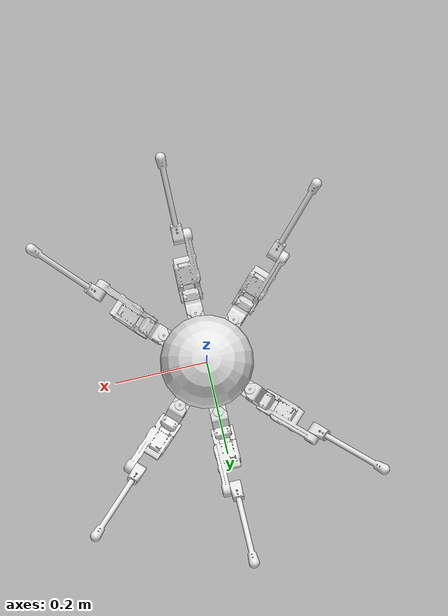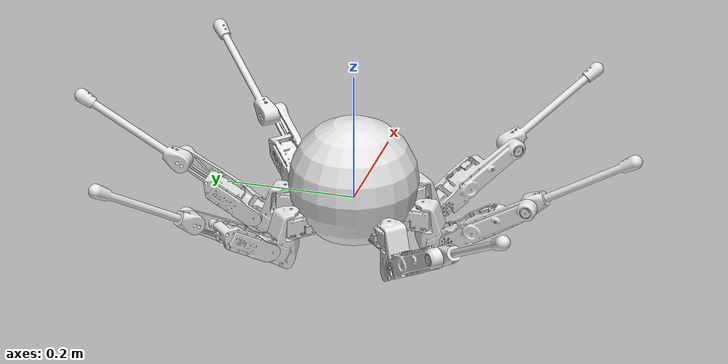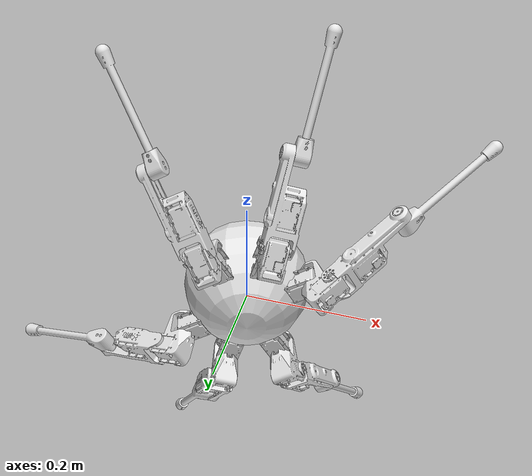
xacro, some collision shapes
<?xml version="1.0"?>
<robot xmlns:xacro="http://www.ros.org/wiki/xacro" name="sence">

    <!-- materials -->
    <xacro:include filename="$(find sence_description)/urdf/common/materials.urdf.xacro" />

    <!-- common -->
    <xacro:include filename="$(find sence_description)/urdf/common/math.urdf.xacro" />

    <!-- assemblies -->
    <xacro:include filename="$(find sence_description)/urdf/assemblies/arm.urdf.xacro" />

    <!-- parts -->
    <xacro:include filename="$(find sence_description)/urdf/parts/body.urdf.xacro" />

    <!-- plugins -->
    <xacro:include filename="$(find sence_description)/urdf/common/plugins.urdf.xacro" />

    <!-- base link -->
    <link name="base_link" />

    <!-- base footprint -->
    <link name="base_footprint"/>

    <joint name="base_footprint_joint" type="prismatic">
        <parent link="base_link" />
        <child link="base_footprint" />
        <origin xyz="0 0 0" rpy="0 0 0" />
        <axis xyz="0 0 1" rpy="0 0 0" />
        <limit upper="-0.09" lower="-0.45" effort="1000" velocity="1000" />
    </joint>

    <!-- body and base link inertia -->
    <xacro:body name="base_link_inertia" parent="base_link">
        <origin xyz="0 0 -0.0515" rpy="0 0 0" />
    </xacro:body>

    <!-- arms -->
    <xacro:arm name="lf" parent="base_link">
        <origin xyz="0.076509 0.076509 0" rpy="0 0 ${M_PI/4}" />
    </xacro:arm>

    <xacro:arm name="rf" parent="base_link">
        <origin xyz="0.076509 -0.076509 0" rpy="0 0 ${-M_PI/4}" />
    </xacro:arm>

    <xacro:arm name="lm" parent="base_link">
        <origin xyz="0 0.1082 0" rpy="0 0 ${M_PI/2}" />
    </xacro:arm>

    <xacro:arm name="rm" parent="base_link">
        <origin xyz="0 -0.1082 0" rpy="0 0 ${-M_PI/2}" />
    </xacro:arm>

    <xacro:arm name="lb" parent="base_link">
        <origin xyz="-0.076509 0.076509 0" rpy="0 0 ${3*M_PI/4}" />
    </xacro:arm>

    <xacro:arm name="rb" parent="base_link">
        <origin xyz="-0.076509 -0.076509 0" rpy="0 0 ${-3*M_PI/4}" />
    </xacro:arm>

    <!-- attach sensor packages -->
    <!-- vision -->
    <xacro:include filename="$(find sence_description)/urdf/accessories/vision_package.urdf.xacro" />
    <xacro:vision_package name="vision_package" parent="base_link">
        <origin xyz="0 0 0" rpy="0 0 0" />
    </xacro:vision_package>

    <!-- range -->
    <xacro:include filename="$(find sence_description)/urdf/accessories/range_package.urdf.xacro" />
    <xacro:range_package name="range_package" parent="base_link">
        <origin xyz="0 0 0" rpy="0 0 0" />
    </xacro:range_package>

    <!-- inertia -->
    <xacro:include filename="$(find sence_description)/urdf/accessories/inertia_package.urdf.xacro" />
    <xacro:inertia_package name="inertia_package" parent="base_link">
        <origin xyz="0 0 0" rpy="0 0 0" />
    </xacro:inertia_package>

    <!-- rviz hud reference frame -->
    <link name="rviz_hud" />
    <joint name="rviz_hud_joint" type="fixed">
        <parent link="base_link" />
        <child link="rviz_hud" />
        <origin xyz="-1 0 1.8" rpy="0 0 0" />
    </joint>

    <!-- extras attachment reference frame -->
    <link name="extras_frame" />
    <joint name="extras_frame_joint" type="fixed">
        <parent link="base_link" />
        <child link="extras_frame" />
        <origin xyz="0 0 0" rpy="0 0 0" />
    </joint>

</robot>

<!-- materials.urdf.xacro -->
<!-- include materials at top level urdf -->

<robot xmlns:xacro="http://www.ros.org/wiki/xacro">

  <!-- material block colours -->
  <material name="Blue">
    <color rgba="0.0 0.0 0.8 1.0"/>
  </material>

  <material name="Green">
    <color rgba="0.0 0.8 0.0 1.0"/>
  </material>

  <material name="Red">
    <color rgba="0.8 0.0 0.0 1.0"/>
  </material>

  <material name="White">
    <color rgba="1.0 1.0 1.0 1.0"/>
  </material>

  <material name="Black">
    <color rgba="0.1 0.1 0.1 1.0"/>
  </material>

  <material name="DarkGrey">
    <color rgba="0.4 0.4 0.4 1.0"/>
  </material>

  <material name="DarkGrey2">
    <color rgba="0.3 0.3 0.3 1.0"/>
  </material>

  <material name="LightGrey">
    <color rgba="0.6 0.6 0.6 1.0"/>
  </material>

  <material name="LightGrey2">
    <color rgba="0.9 0.9 0.9 1.0"/>
  </material>

  <material name="Brown">
    <color rgba="0.8 0.7 0.5 1.0"/>
  </material>

</robot>

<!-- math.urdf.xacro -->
<robot xmlns:xacro="http://www.ros.org/wiki/xacro">

	<!-- constants -->
	<xacro:property name="M_PI" value="3.1415926535897931" />

</robot>

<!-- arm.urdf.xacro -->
<robot xmlns:xacro="http://www.ros.org/wiki/xacro">

    <xacro:macro name="arm" params="name parent *origin">

        <xacro:include filename="$(find sence_description)/urdf/common/math.urdf.xacro" />

        <!-- parts -->
        <xacro:include filename="$(find sence_description)/urdf/parts/wrist.urdf.xacro" />
        <xacro:include filename="$(find sence_description)/urdf/parts/elbow.urdf.xacro" />
        <xacro:include filename="$(find sence_description)/urdf/parts/shoulder.urdf.xacro" />

        <!-- fixed assembly attachment joint -->
        <joint name="${name}_joint" type="fixed" >
            <parent link="${parent}" />
            <child link="${name}" />
            <xacro:insert_block name="origin" />
        </joint>

        <!-- upper shoulder link for attachment -->
        <link name="${name}">

            <!-- visual -->
            <visual>
                <geometry>
                    <mesh filename="package://sence_description/meshes/upper_shoulder.dae"/>
                </geometry>
                <material name="LightGrey2"/>
            </visual>

            <!-- collision -->
            <xacro:property name="collision_box_x" value="0.075" />
            <xacro:property name="collision_box_y" value="0.055" />
            <xacro:property name="collision_box_z" value="0.035" />

            <collision >
                <geometry>
                    <mesh filename="package://sence_description/meshes/upper_shoulder.stl"/>
                </geometry>
            </collision>

            <!-- inertia -->
            <inertial>
                <mass value="0.1" />
                <origin xyz="0 0 0" rpy="0 0 0" />
                <inertia ixx="0.0001" ixy="0.0" ixz="0.0" iyy="0.0001" iyz="0.0" izz="0.0001" />
            </inertial>

        </link>

        <!-- attachment origins -->
        <xacro:property name="square_dim" value="0.01"/>

        <!-- part attachments -->
        <!-- shoulder -->
        <xacro:shoulder name="${name}_shoulder" parent="${name}" >
            <origin xyz="0 0 -0.018396" rpy="0 0 0" />
        </xacro:shoulder>

        <!-- elbow -->
        <xacro:elbow name="${name}_elbow" parent="${name}_shoulder" >
            <origin xyz="0.044234 0 -0.027266" rpy="${M_PI/2} ${-M_PI/6} 0" />
        </xacro:elbow>

        <!-- wrist -->
        <xacro:wrist name="${name}_wrist" parent="${name}_elbow" >
            <origin xyz="0.140 0 0" rpy="0 0 0" />
        </xacro:wrist>

    </xacro:macro>

</robot>

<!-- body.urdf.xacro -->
<robot xmlns:xacro="http://www.ros.org/wiki/xacro">

    <xacro:macro name="body" params="name parent *origin">

        <xacro:include filename="$(find sence_description)/urdf/common/math.urdf.xacro" />

        <!-- fixed attachment joint -->
        <joint name="${name}_joint" type="fixed" >
            <parent link="${parent}" />
            <child link="${name}" />
            <xacro:insert_block name="origin" />
        </joint>

        <!-- body link -->
        <link name="${name}">
            <!-- visual -->
            <visual>
                <geometry>
                    <mesh filename="package://sence_description/meshes/body.stl"/>
                </geometry>
                <material name="LightGrey2"/>
            </visual>

            <!-- collision -->
            <xacro:property name="collision_box_x" value="0.10" />
            <xacro:property name="collision_box_y" value="0.055" />
            <xacro:property name="collision_box_z" value="0.08" />

            <collision >
                <!-- the origin is higher than the mesh origin -->
                <origin xyz="0 0 ${collision_box_z}" rpy="0 0 0" />
                <geometry>
                    <!-- a sphere -->
                    <sphere radius="${collision_box_x}"/>
                </geometry>
            </collision>

            <!-- inertia -->
            <inertial>
                <mass value="1.45" />
                <origin xyz="0 0 0" rpy="0 0 0" />
                <inertia ixx="0.0001" ixy="0.0" ixz="0.0" iyy="0.0001" iyz="0.0" izz="0.0001" />
            </inertial>
        </link>

        <!-- gazebo colour -->
        <gazebo reference="${name}">
            <material>Gazebo/Grey</material>
        </gazebo>

        <!-- gazebo physics properties -->
        <gazebo reference="${name}">
			<mu1 value="0.8"/>
			<mu2 value="0.8"/>
			<kp value="10000000.0" />
			<kd value="1.0" />
			<fdir1 value="1 0 0"/>
		</gazebo>

    </xacro:macro>

</robot>

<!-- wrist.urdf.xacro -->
<robot xmlns:xacro="http://www.ros.org/wiki/xacro">

    <xacro:macro name="wrist" params="name parent *origin">

        <xacro:include filename="$(find sence_description)/urdf/common/math.urdf.xacro" />

        <!-- revolute attachment joint -->
        <joint name="${name}_joint" type="revolute" >
            <parent link="${parent}" />
            <child link="${name}" />
            <xacro:insert_block name="origin" />
            <axis xyz="0 0 1" rpy="0 0 0" />
            <limit upper="2.75" lower="-2.75" effort="2.5" velocity="5.5" />
        </joint>

        <!-- wrist link -->
        <link name="${name}">
            <!-- visual -->
            <visual>
                <geometry>
                    <mesh filename="package://sence_description/meshes/wrist.dae"/>
                </geometry>
                <material name="LightGrey2"/>
            </visual>

            <!-- collision -->
            <xacro:property name="collision_box_x" value="0.075" />
            <xacro:property name="collision_box_y" value="0.055" />
            <xacro:property name="collision_box_z" value="0.035" />

            <collision >
                <geometry>
                    <mesh filename="package://sence_description/meshes/wrist.stl"/>
                </geometry>
            </collision>

            <!-- inertia -->
            <inertial>
                <mass value="0.074" />
                <origin xyz="0.061081 0.000014 0.003984" rpy="0 0 0" />
                <inertia ixx="0.000010616" ixy="0.000000044" ixz="0.0000180236" iyy="0.000429333" iyz="0.000000005" izz="0.000424345" />
            </inertial>
        </link>

        <!-- end ground contact reference frame using a link-->
        <link name="${name}_contact"/>
        <joint name="${name}_contact_joint" type="fixed">
            <parent link="${name}" />
            <child link="${name}_contact" />
            <origin xyz="0.193702 0 0" rpy="0 0 0" />
        </joint>

        <!-- transmission -->
        <transmission name="${name}_trans">
            <type>transmission_interface/SimpleTransmission</type>
            <joint name="${name}_joint">
                <hardwareInterface>hardware_interface/PositionJointInterface</hardwareInterface>
            </joint>
            <actuator name="${name}_motor">
                <mechanicalReduction>1.0</mechanicalReduction>
            </actuator>
        </transmission>

        <!-- gazebo colour -->
        <gazebo reference="${name}">
            <material>Gazebo/Grey</material>
        </gazebo>

        <!-- gazebo physics properties -->

    </xacro:macro>

</robot>

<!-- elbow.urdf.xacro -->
<robot xmlns:xacro="http://www.ros.org/wiki/xacro">

    <xacro:macro name="elbow" params="name parent *origin">

        <xacro:include filename="$(find sence_description)/urdf/common/math.urdf.xacro" />

        <!-- revolute attachment joint -->
        <joint name="${name}_joint" type="revolute" >
            <parent link="${parent}" />
            <child link="${name}" />
            <xacro:insert_block name="origin" />
            <axis xyz="0 0 1" rpy="0 0 0" />
            <limit upper="1.05" lower="-1.6" effort="2.5" velocity="5.5" />
        </joint>

        <!-- elbow link -->
        <link name="${name}">
            <!-- visual -->
            <visual>
                <geometry>
                    <mesh filename="package://sence_description/meshes/elbow.dae"/>
                </geometry>
                <material name="LightGrey2"/>
            </visual>

            <!-- collision -->
            <xacro:property name="collision_box_x" value="0.075" />
            <xacro:property name="collision_box_y" value="0.055" />
            <xacro:property name="collision_box_z" value="0.035" />

            <collision >
                <geometry>
                    <mesh filename="package://sence_description/meshes/elbow.stl"/>
                </geometry>
            </collision>

            <!-- inertia -->
            <inertial>
                <mass value="0.176" />
                <origin xyz="0.05811 -0.000038 0.002579" rpy="0 0 0" />
                <inertia ixx="0.000053794" ixy="0.000004532" ixz="0.000028675" iyy="0.000196511" iyz="-0.000000913" izz="0.000167864" />
            </inertial>
        </link>

        <!-- transmission -->
        <transmission name="${name}_trans">
            <type>transmission_interface/SimpleTransmission</type>
            <joint name="${name}_joint">
                <hardwareInterface>hardware_interface/PositionJointInterface</hardwareInterface>
            </joint>
            <actuator name="${name}_motor">
                <mechanicalReduction>1.0</mechanicalReduction>
            </actuator>
        </transmission>

        <!-- gazebo colour -->
        <gazebo reference="${name}">
            <material>Gazebo/Grey</material>
        </gazebo>

        <!-- gazebo physics properties -->

    </xacro:macro>

</robot>

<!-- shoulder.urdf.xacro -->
<robot xmlns:xacro="http://www.ros.org/wiki/xacro">

    <xacro:macro name="shoulder" params="name parent *origin">

        <xacro:include filename="$(find sence_description)/urdf/common/math.urdf.xacro" />

        <!-- revolute attachment joint -->
        <joint name="${name}_joint" type="revolute" >
            <parent link="${parent}" />
            <child link="${name}" />
            <xacro:insert_block name="origin" />
            <axis xyz="0 0 1" rpy="0 0 0" />
            <limit upper="1.1" lower="-1.1" effort="2.5" velocity="5.5" />
        </joint>

        <!-- shoulder link -->
        <link name="${name}">
            <!-- visual -->
            <visual>
                <geometry>
                    <mesh filename="package://sence_description/meshes/shoulder.dae"/>
                </geometry>
                <material name="LightGrey2"/>
            </visual>

            <!-- collision -->
            <xacro:property name="collision_box_x" value="0.075" />
            <xacro:property name="collision_box_y" value="0.055" />
            <xacro:property name="collision_box_z" value="0.035" />

            <collision >
                <geometry>
                    <mesh filename="package://sence_description/meshes/shoulder.stl"/>
                </geometry>
            </collision>

            <!-- inertia -->
            <inertial>
                <mass value="0.129" />
                <origin xyz="0.027347 -0.00026 -0.027655" rpy="0 0 0" />
                <inertia ixx="0.000058575" ixy="0.000000925" ixz="0.000003174" iyy="0.000075091" iyz="0.000000209" izz="0.000045978" />
            </inertial>
        </link>

        <!-- transmission -->
        <transmission name="${name}_trans" type="SimpleTransmission">
            <type>transmission_interface/SimpleTransmission</type>
            <actuator name="${name}_motor">
                <mechanicalReduction>1</mechanicalReduction>
            </actuator>
            <joint name="${name}_joint">
                <hardwareInterface>hardware_interface/PositionJointInterface</hardwareInterface>
            </joint>
        </transmission>

        <!-- gazebo colour -->
        <gazebo reference="${name}">
            <material>Gazebo/Grey</material>
        </gazebo>

        <!-- gazebo physics properties -->
        <gazebo reference="${name}">
			<mu1 value="0.8"/>
			<mu2 value="0.8"/>
			<kp value="10000000.0" />
			<kd value="1.0" />
			<fdir1 value="1 0 0"/>
		</gazebo>

    </xacro:macro>

</robot>

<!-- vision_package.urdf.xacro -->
<robot xmlns:xacro="http://www.ros.org/wiki/xacro">

    <xacro:macro name="vision_package" params="name parent *origin">
        <link name="${name}" />
        <joint name="${name}_joint" type="fixed">
            <parent link="${parent}" />
            <child link="${name}" />
            <origin xyz="0 0 0" rpy="0 0 0" />
        </joint>
    </xacro:macro>

</robot>

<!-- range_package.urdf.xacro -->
<robot xmlns:xacro="http://www.ros.org/wiki/xacro">

    <xacro:macro name="range_package" params="name parent *origin">
        <link name="${name}" />
        <joint name="${name}_joint" type="fixed">
            <parent link="${parent}" />
            <child link="${name}" />
            <origin xyz="0 0 0" rpy="0 0 0" />
        </joint>
    </xacro:macro>

</robot>

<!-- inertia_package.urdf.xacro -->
<robot xmlns:xacro="http://www.ros.org/wiki/xacro">

    <xacro:macro name="inertia_package" params="name parent *origin">
        <link name="${name}" />
        <joint name="${name}_joint" type="fixed">
            <parent link="${parent}" />
            <child link="${name}" />
            <origin xyz="0 0 0" rpy="0 0 0" />
        </joint>
    </xacro:macro>

</robot>
